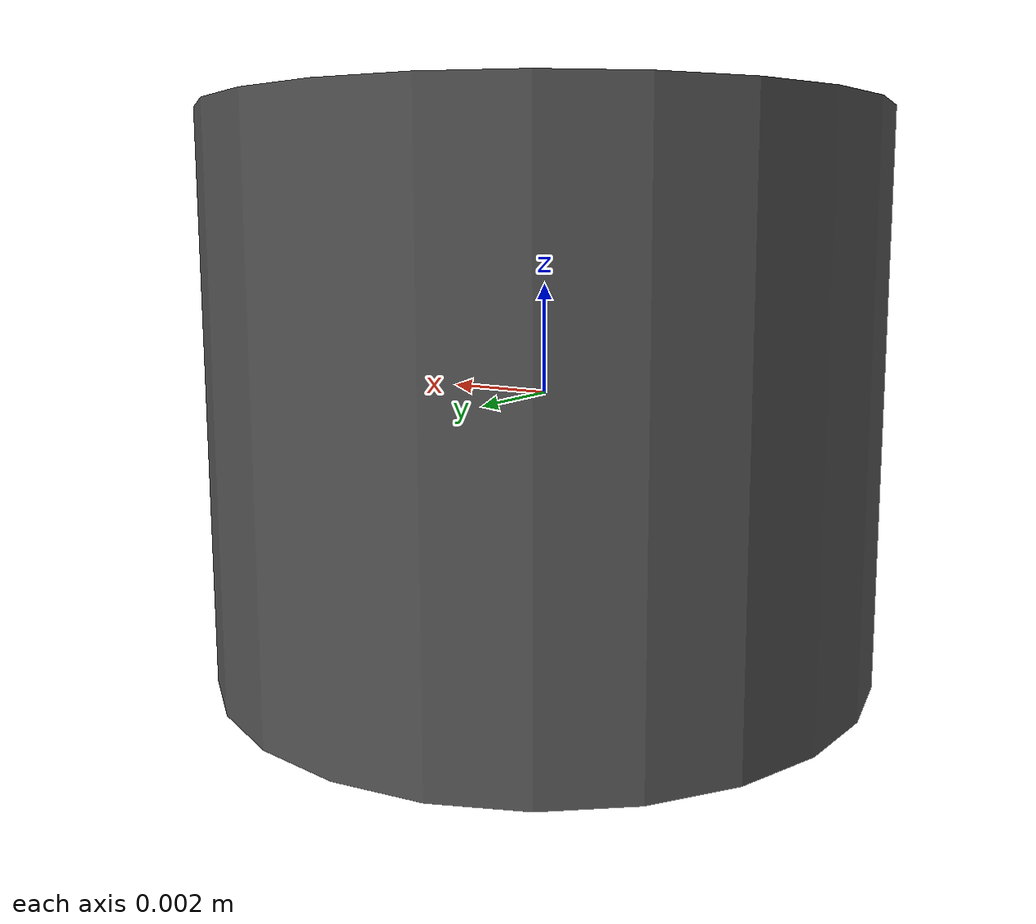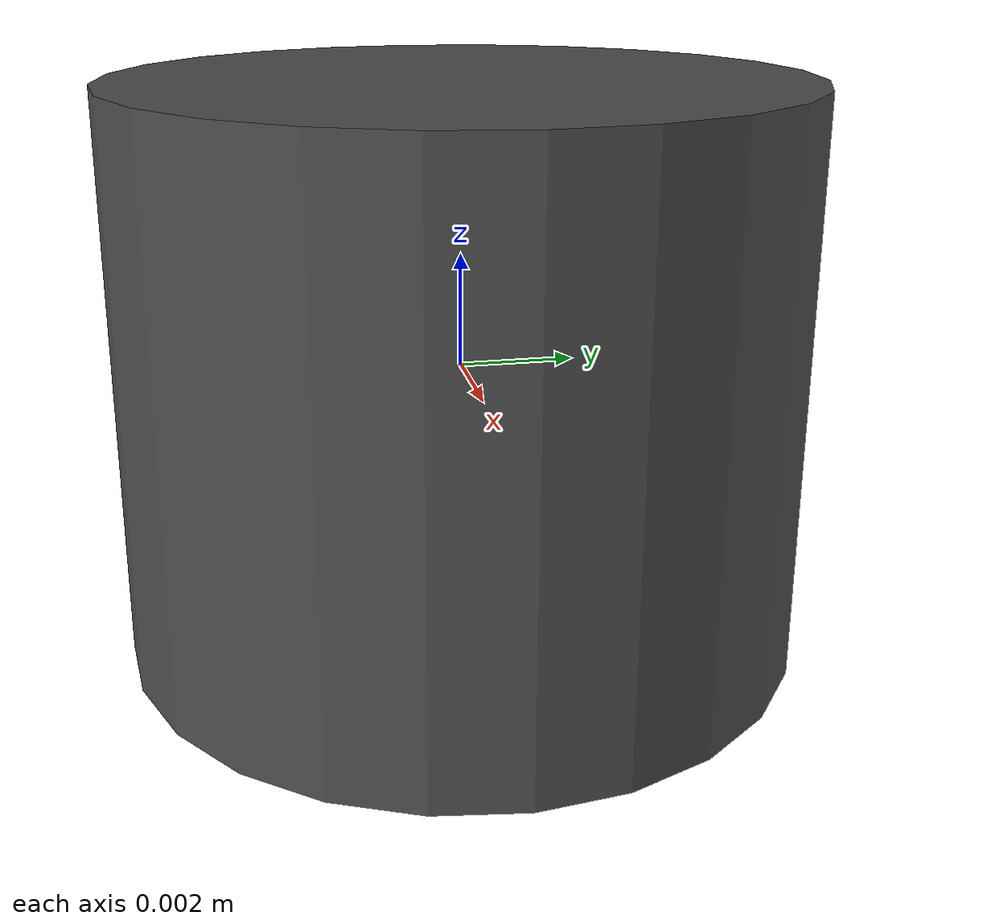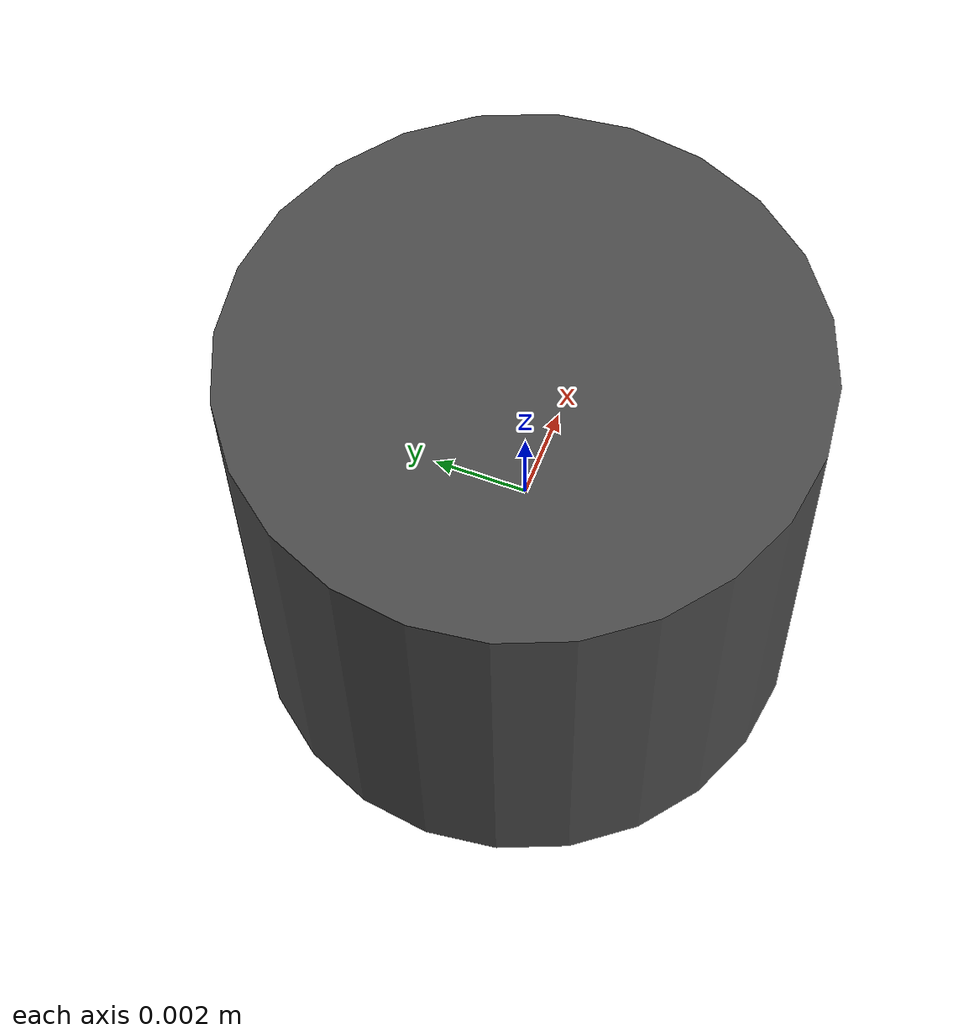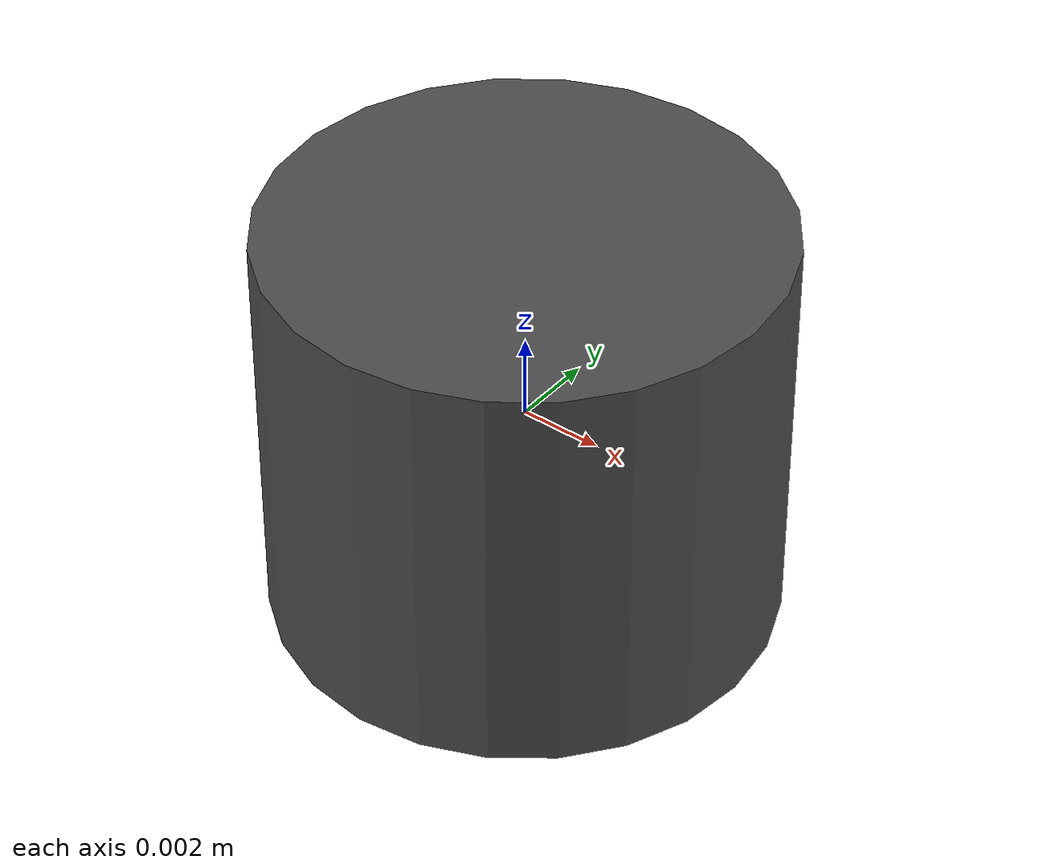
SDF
<?xml version="1.0" ?>
<sdf version="1.6">
  <model name="lidar_2d">
    <link name="lidar_link">

      <inertial>
        <pose>0 0 0 0 -0 0</pose>
        <mass>0.01</mass>
        <inertia>
          <ixx>2.1733e-6</ixx>
          <ixy>0</ixy>
          <ixz>0</ixz>
          <iyy>2.1733e-6</iyy>
          <iyz>0</iyz>
          <izz>1.8e-7</izz>
        </inertia>
      </inertial>

      <visual name="laser_visual">
        <geometry>
          <cylinder>
            <radius>0.006</radius>
            <length>0.01</length>
          </cylinder>
        </geometry>
        <material>
          <script>
            <name>Gazebo/DarkGrey</name>
            <uri>file://media/materials/scripts/gazebo.material</uri>
          </script>
        </material>
      </visual>

      <sensor name="laser" type="ray">
        <pose>0 0 0 0 0 0</pose>
        <ray>
          <scan>
            <horizontal>
              <samples>720</samples>
              <resolution>1</resolution>
              <min_angle>-2.0944</min_angle>
              <max_angle>2.0944</max_angle>
            </horizontal>
          </scan>
          <range>
            <min>0.1</min>
            <max>30</max>
            <resolution>0.01</resolution>
          </range>
          <noise>
            <type>gaussian</type>
            <mean>0.0</mean>
            <stddev>0.01</stddev>
          </noise>
        </ray>
        <plugin name="LaserPlugin" filename="libgazebo_ros_laser.so">
	        <topicName>/laser/scan</topicName>
	        <frameName>/lidar_link</frameName>
	      </plugin>
        <always_on>1</always_on>
        <update_rate>40</update_rate>
        <visualize>true</visualize>
      </sensor>
    </link>
  </model>
</sdf>

<!-- vim: set et fenc= ff=unix sts=0 sw=2 ts=2 : -->
